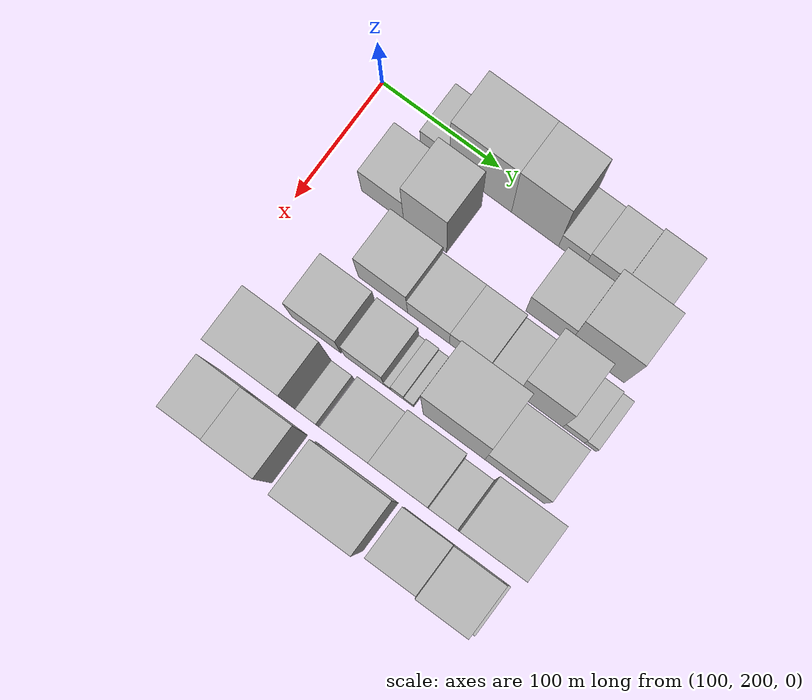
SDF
<sdf version="1.6">
 <world name="default">
  <model name="building_33">
   <static>1</static>
   <pose>100.0000 259.6715 0 0.000000 0.000000 0.000000</pose>
   <link name="link">
    <pose>0 0 22.50 0 0 0</pose>
    <collision name="collision"><geometry><box><size>40.0000 24.7191 45.0000</size></box></geometry></collision>
    <visual name="visual">
     <cast_shadows>0</cast_shadows>
     <geometry><box><size>40.0000 24.7191 45.0000</size></box></geometry>
     <material>
      <script>
       <uri>model://HANNAS_wall/materials/scripts</uri>
       <uri>model://HANNAS_wall/materials/textures</uri>
       <name>vrc/HANNAS_wall</name>
      </script>
     </material>
    </visual>
   </link>
  </model>
  <model name="building_34">
   <static>1</static>
   <pose>100.0000 298.4205 0 0.000000 0.000000 0.000000</pose>
   <link name="link">
    <pose>0 0 66.00 0 0 0</pose>
    <collision name="collision"><geometry><box><size>40.0000 52.7788 132.0000</size></box></geometry></collision>
    <visual name="visual">
     <cast_shadows>0</cast_shadows>
     <geometry><box><size>40.0000 52.7788 132.0000</size></box></geometry>
     <material>
      <script>
       <uri>model://HANNAS_wall/materials/scripts</uri>
       <uri>model://HANNAS_wall/materials/textures</uri>
       <name>vrc/HANNAS_wall</name>
      </script>
     </material>
    </visual>
   </link>
  </model>
  <model name="building_35">
   <static>1</static>
   <pose>100.0000 344.7468 0 0.000000 0.000000 0.000000</pose>
   <link name="link">
    <pose>0 0 66.00 0 0 0</pose>
    <collision name="collision"><geometry><box><size>40.0000 39.8739 132.0000</size></box></geometry></collision>
    <visual name="visual">
     <cast_shadows>0</cast_shadows>
     <geometry><box><size>40.0000 39.8739 132.0000</size></box></geometry>
     <material>
      <script>
       <uri>model://HANNAS_wall/materials/scripts</uri>
       <uri>model://HANNAS_wall/materials/textures</uri>
       <name>vrc/HANNAS_wall</name>
      </script>
     </material>
    </visual>
   </link>
  </model>
  <model name="building_36">
   <static>1</static>
   <pose>100.0000 375.9424 0 0.000000 0.000000 0.000000</pose>
   <link name="link">
    <pose>0 0 22.50 0 0 0</pose>
    <collision name="collision"><geometry><box><size>40.0000 22.5172 45.0000</size></box></geometry></collision>
    <visual name="visual">
     <cast_shadows>0</cast_shadows>
     <geometry><box><size>40.0000 22.5172 45.0000</size></box></geometry>
     <material>
      <script>
       <uri>model://HANNAS_wall/materials/scripts</uri>
       <uri>model://HANNAS_wall/materials/textures</uri>
       <name>vrc/HANNAS_wall</name>
      </script>
     </material>
    </visual>
   </link>
  </model>
  <model name="building_37">
   <static>1</static>
   <pose>100.0000 401.6316 0 0.000000 0.000000 0.000000</pose>
   <link name="link">
    <pose>0 0 27.00 0 0 0</pose>
    <collision name="collision"><geometry><box><size>40.0000 28.8611 54.0000</size></box></geometry></collision>
    <visual name="visual">
     <cast_shadows>0</cast_shadows>
     <geometry><box><size>40.0000 28.8611 54.0000</size></box></geometry>
     <material>
      <script>
       <uri>model://HANNAS_wall/materials/scripts</uri>
       <uri>model://HANNAS_wall/materials/textures</uri>
       <name>vrc/HANNAS_wall</name>
      </script>
     </material>
    </visual>
   </link>
  </model>
  <model name="building_38">
   <static>1</static>
   <pose>100.0000 432.5570 0 0.000000 0.000000 0.000000</pose>
   <link name="link">
    <pose>0 0 31.50 0 0 0</pose>
    <collision name="collision"><geometry><box><size>40.0000 32.9896 63.0000</size></box></geometry></collision>
    <visual name="visual">
     <cast_shadows>0</cast_shadows>
     <geometry><box><size>40.0000 32.9896 63.0000</size></box></geometry>
     <material>
      <script>
       <uri>model://HANNAS_wall/materials/scripts</uri>
       <uri>model://HANNAS_wall/materials/textures</uri>
       <name>vrc/HANNAS_wall</name>
      </script>
     </material>
    </visual>
   </link>
  </model>
  <model name="building_81">
   <static>1</static>
   <pose>149.0000 251.5522 0 0.000000 0.000000 0.000000</pose>
   <link name="link">
    <pose>0 0 33.00 0 0 0</pose>
    <collision name="collision"><geometry><box><size>40.0000 35.8211 66.0000</size></box></geometry></collision>
    <visual name="visual">
     <cast_shadows>0</cast_shadows>
     <geometry><box><size>40.0000 35.8211 66.0000</size></box></geometry>
     <material>
      <script>
       <uri>model://HANNAS_wall/materials/scripts</uri>
       <uri>model://HANNAS_wall/materials/textures</uri>
       <name>vrc/HANNAS_wall</name>
      </script>
     </material>
    </visual>
   </link>
  </model>
  <model name="building_82">
   <static>1</static>
   <pose>149.0000 287.7121 0 0.000000 0.000000 0.000000</pose>
   <link name="link">
    <pose>0 0 58.50 0 0 0</pose>
    <collision name="collision"><geometry><box><size>40.0000 36.4986 117.0000</size></box></geometry></collision>
    <visual name="visual">
     <cast_shadows>0</cast_shadows>
     <geometry><box><size>40.0000 36.4986 117.0000</size></box></geometry>
     <material>
      <script>
       <uri>model://HANNAS_wall/materials/scripts</uri>
       <uri>model://HANNAS_wall/materials/textures</uri>
       <name>vrc/HANNAS_wall</name>
      </script>
     </material>
    </visual>
   </link>
  </model>
  <model name="building_83">
   <static>1</static>
   <pose>149.0000 391.4420 0 0.000000 0.000000 0.000000</pose>
   <link name="link">
    <pose>0 0 36.00 0 0 0</pose>
    <collision name="collision"><geometry><box><size>40.0000 36.9871 72.0000</size></box></geometry></collision>
    <visual name="visual">
     <cast_shadows>0</cast_shadows>
     <geometry><box><size>40.0000 36.9871 72.0000</size></box></geometry>
     <material>
      <script>
       <uri>model://HANNAS_wall/materials/scripts</uri>
       <uri>model://HANNAS_wall/materials/textures</uri>
       <name>vrc/HANNAS_wall</name>
      </script>
     </material>
    </visual>
   </link>
  </model>
  <model name="building_84">
   <static>1</static>
   <pose>149.0000 432.7237 0 0.000000 0.000000 0.000000</pose>
   <link name="link">
    <pose>0 0 63.00 0 0 0</pose>
    <collision name="collision"><geometry><box><size>40.0000 45.5762 126.0000</size></box></geometry></collision>
    <visual name="visual">
     <cast_shadows>0</cast_shadows>
     <geometry><box><size>40.0000 45.5762 126.0000</size></box></geometry>
     <material>
      <script>
       <uri>model://HANNAS_wall/materials/scripts</uri>
       <uri>model://HANNAS_wall/materials/textures</uri>
       <name>vrc/HANNAS_wall</name>
      </script>
     </material>
    </visual>
   </link>
  </model>
  <model name="building_128">
   <static>1</static>
   <pose>198.0000 288.4253 0 0.000000 0.000000 0.000000</pose>
   <link name="link">
    <pose>0 0 40.50 0 0 0</pose>
    <collision name="collision"><geometry><box><size>40.0000 41.8972 81.0000</size></box></geometry></collision>
    <visual name="visual">
     <cast_shadows>0</cast_shadows>
     <geometry><box><size>40.0000 41.8972 81.0000</size></box></geometry>
     <material>
      <script>
       <uri>model://HANNAS_wall/materials/scripts</uri>
       <uri>model://HANNAS_wall/materials/textures</uri>
       <name>vrc/HANNAS_wall</name>
      </script>
     </material>
    </visual>
   </link>
  </model>
  <model name="building_129">
   <static>1</static>
   <pose>198.0000 327.0059 0 0.000000 0.000000 0.000000</pose>
   <link name="link">
    <pose>0 0 30.00 0 0 0</pose>
    <collision name="collision"><geometry><box><size>40.0000 35.2640 60.0000</size></box></geometry></collision>
    <visual name="visual">
     <cast_shadows>0</cast_shadows>
     <geometry><box><size>40.0000 35.2640 60.0000</size></box></geometry>
     <material>
      <script>
       <uri>model://HANNAS_wall/materials/scripts</uri>
       <uri>model://HANNAS_wall/materials/textures</uri>
       <name>vrc/HANNAS_wall</name>
      </script>
     </material>
    </visual>
   </link>
  </model>
  <model name="building_130">
   <static>1</static>
   <pose>198.0000 361.1175 0 0.000000 0.000000 0.000000</pose>
   <link name="link">
    <pose>0 0 30.00 0 0 0</pose>
    <collision name="collision"><geometry><box><size>40.0000 32.9593 60.0000</size></box></geometry></collision>
    <visual name="visual">
     <cast_shadows>0</cast_shadows>
     <geometry><box><size>40.0000 32.9593 60.0000</size></box></geometry>
     <material>
      <script>
       <uri>model://HANNAS_wall/materials/scripts</uri>
       <uri>model://HANNAS_wall/materials/textures</uri>
       <name>vrc/HANNAS_wall</name>
      </script>
     </material>
    </visual>
   </link>
  </model>
  <model name="building_131">
   <static>1</static>
   <pose>198.0000 390.0472 0 0.000000 0.000000 0.000000</pose>
   <link name="link">
    <pose>0 0 22.50 0 0 0</pose>
    <collision name="collision"><geometry><box><size>40.0000 24.9001 45.0000</size></box></geometry></collision>
    <visual name="visual">
     <cast_shadows>0</cast_shadows>
     <geometry><box><size>40.0000 24.9001 45.0000</size></box></geometry>
     <material>
      <script>
       <uri>model://HANNAS_wall/materials/scripts</uri>
       <uri>model://HANNAS_wall/materials/textures</uri>
       <name>vrc/HANNAS_wall</name>
      </script>
     </material>
    </visual>
   </link>
  </model>
  <model name="building_132">
   <static>1</static>
   <pose>198.0000 421.1160 0 0.000000 0.000000 0.000000</pose>
   <link name="link">
    <pose>0 0 58.50 0 0 0</pose>
    <collision name="collision"><geometry><box><size>40.0000 37.2373 117.0000</size></box></geometry></collision>
    <visual name="visual">
     <cast_shadows>0</cast_shadows>
     <geometry><box><size>40.0000 37.2373 117.0000</size></box></geometry>
     <material>
      <script>
       <uri>model://HANNAS_wall/materials/scripts</uri>
       <uri>model://HANNAS_wall/materials/textures</uri>
       <name>vrc/HANNAS_wall</name>
      </script>
     </material>
    </visual>
   </link>
  </model>
  <model name="building_133">
   <static>1</static>
   <pose>198.0000 448.8676 0 0.000000 0.000000 0.000000</pose>
   <link name="link">
    <pose>0 0 16.50 0 0 0</pose>
    <collision name="collision"><geometry><box><size>40.0000 18.2660 33.0000</size></box></geometry></collision>
    <visual name="visual">
     <cast_shadows>0</cast_shadows>
     <geometry><box><size>40.0000 18.2660 33.0000</size></box></geometry>
     <material>
      <script>
       <uri>model://HANNAS_wall/materials/scripts</uri>
       <uri>model://HANNAS_wall/materials/textures</uri>
       <name>vrc/HANNAS_wall</name>
      </script>
     </material>
    </visual>
   </link>
  </model>
  <model name="building_134">
   <static>1</static>
   <pose>198.0000 462.8233 0 0.000000 0.000000 0.000000</pose>
   <link name="link">
    <pose>0 0 12.00 0 0 0</pose>
    <collision name="collision"><geometry><box><size>40.0000 9.6454 24.0000</size></box></geometry></collision>
    <visual name="visual">
     <cast_shadows>0</cast_shadows>
     <geometry><box><size>40.0000 9.6454 24.0000</size></box></geometry>
     <material>
      <script>
       <uri>model://HANNAS_wall/materials/scripts</uri>
       <uri>model://HANNAS_wall/materials/textures</uri>
       <name>vrc/HANNAS_wall</name>
      </script>
     </material>
    </visual>
   </link>
  </model>
  <model name="building_175">
   <static>1</static>
   <pose>247.0000 268.7239 0 0.000000 0.000000 0.000000</pose>
   <link name="link">
    <pose>0 0 37.50 0 0 0</pose>
    <collision name="collision"><geometry><box><size>40.0000 41.5685 75.0000</size></box></geometry></collision>
    <visual name="visual">
     <cast_shadows>0</cast_shadows>
     <geometry><box><size>40.0000 41.5685 75.0000</size></box></geometry>
     <material>
      <script>
       <uri>model://HANNAS_wall/materials/scripts</uri>
       <uri>model://HANNAS_wall/materials/textures</uri>
       <name>vrc/HANNAS_wall</name>
      </script>
     </material>
    </visual>
   </link>
  </model>
  <model name="building_176">
   <static>1</static>
   <pose>247.0000 309.0867 0 0.000000 0.000000 0.000000</pose>
   <link name="link">
    <pose>0 0 30.00 0 0 0</pose>
    <collision name="collision"><geometry><box><size>40.0000 33.1571 60.0000</size></box></geometry></collision>
    <visual name="visual">
     <cast_shadows>0</cast_shadows>
     <geometry><box><size>40.0000 33.1571 60.0000</size></box></geometry>
     <material>
      <script>
       <uri>model://HANNAS_wall/materials/scripts</uri>
       <uri>model://HANNAS_wall/materials/textures</uri>
       <name>vrc/HANNAS_wall</name>
      </script>
     </material>
    </visual>
   </link>
  </model>
  <model name="building_177">
   <static>1</static>
   <pose>247.0000 328.7197 0 0.000000 0.000000 0.000000</pose>
   <link name="link">
    <pose>0 0 7.50 0 0 0</pose>
    <collision name="collision"><geometry><box><size>40.0000 6.1088 15.0000</size></box></geometry></collision>
    <visual name="visual">
     <cast_shadows>0</cast_shadows>
     <geometry><box><size>40.0000 6.1088 15.0000</size></box></geometry>
     <material>
      <script>
       <uri>model://HANNAS_wall/materials/scripts</uri>
       <uri>model://HANNAS_wall/materials/textures</uri>
       <name>vrc/HANNAS_wall</name>
      </script>
     </material>
    </visual>
   </link>
  </model>
  <model name="building_178">
   <static>1</static>
   <pose>247.0000 337.2028 0 0.000000 0.000000 0.000000</pose>
   <link name="link">
    <pose>0 0 13.50 0 0 0</pose>
    <collision name="collision"><geometry><box><size>40.0000 10.8574 27.0000</size></box></geometry></collision>
    <visual name="visual">
     <cast_shadows>0</cast_shadows>
     <geometry><box><size>40.0000 10.8574 27.0000</size></box></geometry>
     <material>
      <script>
       <uri>model://HANNAS_wall/materials/scripts</uri>
       <uri>model://HANNAS_wall/materials/textures</uri>
       <name>vrc/HANNAS_wall</name>
      </script>
     </material>
    </visual>
   </link>
  </model>
  <model name="building_179">
   <static>1</static>
   <pose>247.0000 346.7066 0 0.000000 0.000000 0.000000</pose>
   <link name="link">
    <pose>0 0 9.00 0 0 0</pose>
    <collision name="collision"><geometry><box><size>40.0000 8.1502 18.0000</size></box></geometry></collision>
    <visual name="visual">
     <cast_shadows>0</cast_shadows>
     <geometry><box><size>40.0000 8.1502 18.0000</size></box></geometry>
     <material>
      <script>
       <uri>model://HANNAS_wall/materials/scripts</uri>
       <uri>model://HANNAS_wall/materials/textures</uri>
       <name>vrc/HANNAS_wall</name>
      </script>
     </material>
    </visual>
   </link>
  </model>
  <model name="building_180">
   <static>1</static>
   <pose>247.0000 384.7025 0 0.000000 0.000000 0.000000</pose>
   <link name="link">
    <pose>0 0 85.50 0 0 0</pose>
    <collision name="collision"><geometry><box><size>40.0000 51.8416 171.0000</size></box></geometry></collision>
    <visual name="visual">
     <cast_shadows>0</cast_shadows>
     <geometry><box><size>40.0000 51.8416 171.0000</size></box></geometry>
     <material>
      <script>
       <uri>model://HANNAS_wall/materials/scripts</uri>
       <uri>model://HANNAS_wall/materials/textures</uri>
       <name>vrc/HANNAS_wall</name>
      </script>
     </material>
    </visual>
   </link>
  </model>
  <model name="building_181">
   <static>1</static>
   <pose>247.0000 435.2918 0 0.000000 0.000000 0.000000</pose>
   <link name="link">
    <pose>0 0 45.00 0 0 0</pose>
    <collision name="collision"><geometry><box><size>40.0000 49.3371 90.0000</size></box></geometry></collision>
    <visual name="visual">
     <cast_shadows>0</cast_shadows>
     <geometry><box><size>40.0000 49.3371 90.0000</size></box></geometry>
     <material>
      <script>
       <uri>model://HANNAS_wall/materials/scripts</uri>
       <uri>model://HANNAS_wall/materials/textures</uri>
       <name>vrc/HANNAS_wall</name>
      </script>
     </material>
    </visual>
   </link>
  </model>
  <model name="building_222">
   <static>1</static>
   <pose>296.0000 262.0290 0 0.000000 0.000000 0.000000</pose>
   <link name="link">
    <pose>0 0 75.00 0 0 0</pose>
    <collision name="collision"><geometry><box><size>40.0000 56.5795 150.0000</size></box></geometry></collision>
    <visual name="visual">
     <cast_shadows>0</cast_shadows>
     <geometry><box><size>40.0000 56.5795 150.0000</size></box></geometry>
     <material>
      <script>
       <uri>model://HANNAS_wall/materials/scripts</uri>
       <uri>model://HANNAS_wall/materials/textures</uri>
       <name>vrc/HANNAS_wall</name>
      </script>
     </material>
    </visual>
   </link>
  </model>
  <model name="building_223">
   <static>1</static>
   <pose>296.0000 298.7848 0 0.000000 0.000000 0.000000</pose>
   <link name="link">
    <pose>0 0 15.00 0 0 0</pose>
    <collision name="collision"><geometry><box><size>40.0000 16.9320 30.0000</size></box></geometry></collision>
    <visual name="visual">
     <cast_shadows>0</cast_shadows>
     <geometry><box><size>40.0000 16.9320 30.0000</size></box></geometry>
     <material>
      <script>
       <uri>model://HANNAS_wall/materials/scripts</uri>
       <uri>model://HANNAS_wall/materials/textures</uri>
       <name>vrc/HANNAS_wall</name>
      </script>
     </material>
    </visual>
   </link>
  </model>
  <model name="building_224">
   <static>1</static>
   <pose>296.0000 334.7481 0 0.000000 0.000000 0.000000</pose>
   <link name="link">
    <pose>0 0 37.50 0 0 0</pose>
    <collision name="collision"><geometry><box><size>40.0000 40.9947 75.0000</size></box></geometry></collision>
    <visual name="visual">
     <cast_shadows>0</cast_shadows>
     <geometry><box><size>40.0000 40.9947 75.0000</size></box></geometry>
     <material>
      <script>
       <uri>model://HANNAS_wall/materials/scripts</uri>
       <uri>model://HANNAS_wall/materials/textures</uri>
       <name>vrc/HANNAS_wall</name>
      </script>
     </material>
    </visual>
   </link>
  </model>
  <model name="building_225">
   <static>1</static>
   <pose>296.0000 377.5438 0 0.000000 0.000000 0.000000</pose>
   <link name="link">
    <pose>0 0 64.50 0 0 0</pose>
    <collision name="collision"><geometry><box><size>40.0000 44.5965 129.0000</size></box></geometry></collision>
    <visual name="visual">
     <cast_shadows>0</cast_shadows>
     <geometry><box><size>40.0000 44.5965 129.0000</size></box></geometry>
     <material>
      <script>
       <uri>model://HANNAS_wall/materials/scripts</uri>
       <uri>model://HANNAS_wall/materials/textures</uri>
       <name>vrc/HANNAS_wall</name>
      </script>
     </material>
    </visual>
   </link>
  </model>
  <model name="building_226">
   <static>1</static>
   <pose>296.0000 411.6336 0 0.000000 0.000000 0.000000</pose>
   <link name="link">
    <pose>0 0 22.50 0 0 0</pose>
    <collision name="collision"><geometry><box><size>40.0000 23.5832 45.0000</size></box></geometry></collision>
    <visual name="visual">
     <cast_shadows>0</cast_shadows>
     <geometry><box><size>40.0000 23.5832 45.0000</size></box></geometry>
     <material>
      <script>
       <uri>model://HANNAS_wall/materials/scripts</uri>
       <uri>model://HANNAS_wall/materials/textures</uri>
       <name>vrc/HANNAS_wall</name>
      </script>
     </material>
    </visual>
   </link>
  </model>
  <model name="building_227">
   <static>1</static>
   <pose>296.0000 447.9472 0 0.000000 0.000000 0.000000</pose>
   <link name="link">
    <pose>0 0 76.50 0 0 0</pose>
    <collision name="collision"><geometry><box><size>40.0000 49.0439 153.0000</size></box></geometry></collision>
    <visual name="visual">
     <cast_shadows>0</cast_shadows>
     <geometry><box><size>40.0000 49.0439 153.0000</size></box></geometry>
     <material>
      <script>
       <uri>model://HANNAS_wall/materials/scripts</uri>
       <uri>model://HANNAS_wall/materials/textures</uri>
       <name>vrc/HANNAS_wall</name>
      </script>
     </material>
    </visual>
   </link>
  </model>
  <model name="building_272">
   <static>1</static>
   <pose>345.0000 247.6707 0 0.000000 0.000000 0.000000</pose>
   <link name="link">
    <pose>0 0 57.00 0 0 0</pose>
    <collision name="collision"><geometry><box><size>40.0000 34.6864 114.0000</size></box></geometry></collision>
    <visual name="visual">
     <cast_shadows>0</cast_shadows>
     <geometry><box><size>40.0000 34.6864 114.0000</size></box></geometry>
     <material>
      <script>
       <uri>model://HANNAS_wall/materials/scripts</uri>
       <uri>model://HANNAS_wall/materials/textures</uri>
       <name>vrc/HANNAS_wall</name>
      </script>
     </material>
    </visual>
   </link>
  </model>
  <model name="building_273">
   <static>1</static>
   <pose>345.0000 284.8528 0 0.000000 0.000000 0.000000</pose>
   <link name="link">
    <pose>0 0 60.00 0 0 0</pose>
    <collision name="collision"><geometry><box><size>40.0000 39.6780 120.0000</size></box></geometry></collision>
    <visual name="visual">
     <cast_shadows>0</cast_shadows>
     <geometry><box><size>40.0000 39.6780 120.0000</size></box></geometry>
     <material>
      <script>
       <uri>model://HANNAS_wall/materials/scripts</uri>
       <uri>model://HANNAS_wall/materials/textures</uri>
       <name>vrc/HANNAS_wall</name>
      </script>
     </material>
    </visual>
   </link>
  </model>
  <model name="building_274">
   <static>1</static>
   <pose>345.0000 317.0044 0 0.000000 0.000000 0.000000</pose>
   <link name="link">
    <pose>0 0 9.00 0 0 0</pose>
    <collision name="collision"><geometry><box><size>40.0000 8.6251 18.0000</size></box></geometry></collision>
    <visual name="visual">
     <cast_shadows>0</cast_shadows>
     <geometry><box><size>40.0000 8.6251 18.0000</size></box></geometry>
     <material>
      <script>
       <uri>model://HANNAS_wall/materials/scripts</uri>
       <uri>model://HANNAS_wall/materials/textures</uri>
       <name>vrc/HANNAS_wall</name>
      </script>
     </material>
    </visual>
   </link>
  </model>
  <model name="building_275">
   <static>1</static>
   <pose>345.0000 351.2404 0 0.000000 0.000000 0.000000</pose>
   <link name="link">
    <pose>0 0 79.50 0 0 0</pose>
    <collision name="collision"><geometry><box><size>40.0000 59.8469 159.0000</size></box></geometry></collision>
    <visual name="visual">
     <cast_shadows>0</cast_shadows>
     <geometry><box><size>40.0000 59.8469 159.0000</size></box></geometry>
     <material>
      <script>
       <uri>model://HANNAS_wall/materials/scripts</uri>
       <uri>model://HANNAS_wall/materials/textures</uri>
       <name>vrc/HANNAS_wall</name>
      </script>
     </material>
    </visual>
   </link>
  </model>
  <model name="building_276">
   <static>1</static>
   <pose>345.0000 406.3502 0 0.000000 0.000000 0.000000</pose>
   <link name="link">
    <pose>0 0 36.00 0 0 0</pose>
    <collision name="collision"><geometry><box><size>40.0000 40.3728 72.0000</size></box></geometry></collision>
    <visual name="visual">
     <cast_shadows>0</cast_shadows>
     <geometry><box><size>40.0000 40.3728 72.0000</size></box></geometry>
     <material>
      <script>
       <uri>model://HANNAS_wall/materials/scripts</uri>
       <uri>model://HANNAS_wall/materials/textures</uri>
       <name>vrc/HANNAS_wall</name>
      </script>
     </material>
    </visual>
   </link>
  </model>
  <model name="building_277">
   <static>1</static>
   <pose>345.0000 446.8782 0 0.000000 0.000000 0.000000</pose>
   <link name="link">
    <pose>0 0 52.50 0 0 0</pose>
    <collision name="collision"><geometry><box><size>40.0000 40.6833 105.0000</size></box></geometry></collision>
    <visual name="visual">
     <cast_shadows>0</cast_shadows>
     <geometry><box><size>40.0000 40.6833 105.0000</size></box></geometry>
     <material>
      <script>
       <uri>model://HANNAS_wall/materials/scripts</uri>
       <uri>model://HANNAS_wall/materials/textures</uri>
       <name>vrc/HANNAS_wall</name>
      </script>
     </material>
    </visual>
   </link>
  </model>
  <model name="building_278">
   <static>1</static>
   <pose>345.0000 470.7263 0 0.000000 0.000000 0.000000</pose>
   <link name="link">
    <pose>0 0 7.50 0 0 0</pose>
    <collision name="collision"><geometry><box><size>40.0000 7.0129 15.0000</size></box></geometry></collision>
    <visual name="visual">
     <cast_shadows>0</cast_shadows>
     <geometry><box><size>40.0000 7.0129 15.0000</size></box></geometry>
     <material>
      <script>
       <uri>model://HANNAS_wall/materials/scripts</uri>
       <uri>model://HANNAS_wall/materials/textures</uri>
       <name>vrc/HANNAS_wall</name>
      </script>
     </material>
    </visual>
   </link>
  </model>
 </world>
</sdf>
